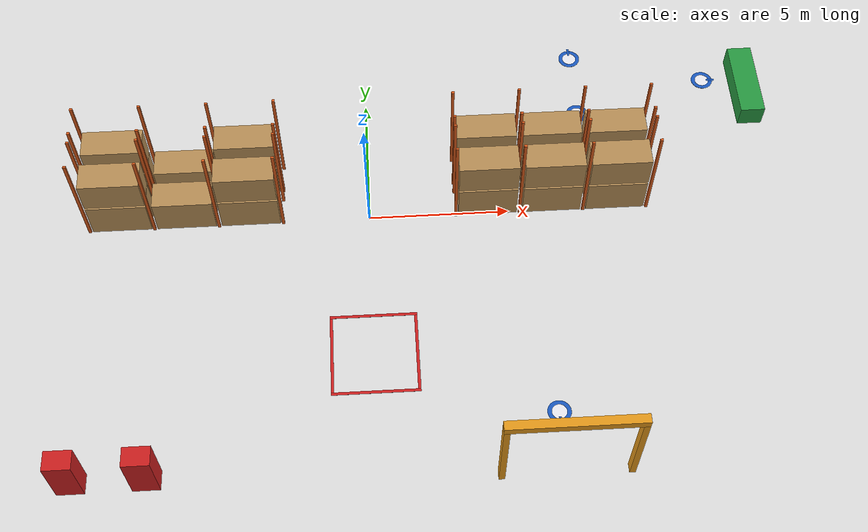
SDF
<sdf version="1.8">
 <world name="warehouse">
  <model name="DoorGap">
   <static>true</static>
   <pose>6.00 -10.10 0 0 0 0</pose>
   <link name="link">
    <collision name="post_west_collision">
     <pose>-2.100 0.000 1.750 0 0 0</pose>
     <geometry><box><size>0.200 0.300 3.500</size></box></geometry>
    </collision>
    <visual name="post_west_visual">
     <pose>-2.100 0.000 1.750 0 0 0</pose>
     <geometry><box><size>0.200 0.300 3.500</size></box></geometry>
     <material><ambient>0.90 0.60 0.10 1</ambient><diffuse>0.90 0.60 0.10 1</diffuse></material>
    </visual>
    <collision name="post_east_collision">
     <pose>2.100 0.000 1.750 0 0 0</pose>
     <geometry><box><size>0.200 0.300 3.500</size></box></geometry>
    </collision>
    <visual name="post_east_visual">
     <pose>2.100 0.000 1.750 0 0 0</pose>
     <geometry><box><size>0.200 0.300 3.500</size></box></geometry>
     <material><ambient>0.90 0.60 0.10 1</ambient><diffuse>0.90 0.60 0.10 1</diffuse></material>
    </visual>
    <collision name="lintel_collision">
     <pose>0.000 0.000 3.650 0 0 0</pose>
     <geometry><box><size>4.400 0.300 0.300</size></box></geometry>
    </collision>
    <visual name="lintel_visual">
     <pose>0.000 0.000 3.650 0 0 0</pose>
     <geometry><box><size>4.400 0.300 0.300</size></box></geometry>
     <material><ambient>0.90 0.60 0.10 1</ambient><diffuse>0.90 0.60 0.10 1</diffuse></material>
    </visual>
   </link>
  </model>
  <model name="RackRowB_West">
   <static>true</static>
   <link name="link">
    <collision name="bn_frame0_front_collision">
     <pose>-10.000 2.360 2.000 0 0 0</pose>
     <geometry><box><size>0.100 0.080 4.000</size></box></geometry>
    </collision>
    <visual name="bn_frame0_front_visual">
     <pose>-10.000 2.360 2.000 0 0 0</pose>
     <geometry><box><size>0.100 0.080 4.000</size></box></geometry>
     <material><ambient>0.85 0.35 0.10 1</ambient><diffuse>0.85 0.35 0.10 1</diffuse></material>
    </visual>
    <collision name="bn_frame0_rear_collision">
     <pose>-10.000 1.340 2.000 0 0 0</pose>
     <geometry><box><size>0.100 0.080 4.000</size></box></geometry>
    </collision>
    <visual name="bn_frame0_rear_visual">
     <pose>-10.000 1.340 2.000 0 0 0</pose>
     <geometry><box><size>0.100 0.080 4.000</size></box></geometry>
     <material><ambient>0.85 0.35 0.10 1</ambient><diffuse>0.85 0.35 0.10 1</diffuse></material>
    </visual>
    <collision name="bn_frame1_front_collision">
     <pose>-7.700 2.360 2.000 0 0 0</pose>
     <geometry><box><size>0.100 0.080 4.000</size></box></geometry>
    </collision>
    <visual name="bn_frame1_front_visual">
     <pose>-7.700 2.360 2.000 0 0 0</pose>
     <geometry><box><size>0.100 0.080 4.000</size></box></geometry>
     <material><ambient>0.85 0.35 0.10 1</ambient><diffuse>0.85 0.35 0.10 1</diffuse></material>
    </visual>
    <collision name="bn_frame1_rear_collision">
     <pose>-7.700 1.340 2.000 0 0 0</pose>
     <geometry><box><size>0.100 0.080 4.000</size></box></geometry>
    </collision>
    <visual name="bn_frame1_rear_visual">
     <pose>-7.700 1.340 2.000 0 0 0</pose>
     <geometry><box><size>0.100 0.080 4.000</size></box></geometry>
     <material><ambient>0.85 0.35 0.10 1</ambient><diffuse>0.85 0.35 0.10 1</diffuse></material>
    </visual>
    <collision name="bn_frame2_front_collision">
     <pose>-5.400 2.360 2.000 0 0 0</pose>
     <geometry><box><size>0.100 0.080 4.000</size></box></geometry>
    </collision>
    <visual name="bn_frame2_front_visual">
     <pose>-5.400 2.360 2.000 0 0 0</pose>
     <geometry><box><size>0.100 0.080 4.000</size></box></geometry>
     <material><ambient>0.85 0.35 0.10 1</ambient><diffuse>0.85 0.35 0.10 1</diffuse></material>
    </visual>
    <collision name="bn_frame2_rear_collision">
     <pose>-5.400 1.340 2.000 0 0 0</pose>
     <geometry><box><size>0.100 0.080 4.000</size></box></geometry>
    </collision>
    <visual name="bn_frame2_rear_visual">
     <pose>-5.400 1.340 2.000 0 0 0</pose>
     <geometry><box><size>0.100 0.080 4.000</size></box></geometry>
     <material><ambient>0.85 0.35 0.10 1</ambient><diffuse>0.85 0.35 0.10 1</diffuse></material>
    </visual>
    <collision name="bn_frame3_front_collision">
     <pose>-3.100 2.360 2.000 0 0 0</pose>
     <geometry><box><size>0.100 0.080 4.000</size></box></geometry>
    </collision>
    <visual name="bn_frame3_front_visual">
     <pose>-3.100 2.360 2.000 0 0 0</pose>
     <geometry><box><size>0.100 0.080 4.000</size></box></geometry>
     <material><ambient>0.85 0.35 0.10 1</ambient><diffuse>0.85 0.35 0.10 1</diffuse></material>
    </visual>
    <collision name="bn_frame3_rear_collision">
     <pose>-3.100 1.340 2.000 0 0 0</pose>
     <geometry><box><size>0.100 0.080 4.000</size></box></geometry>
    </collision>
    <visual name="bn_frame3_rear_visual">
     <pose>-3.100 1.340 2.000 0 0 0</pose>
     <geometry><box><size>0.100 0.080 4.000</size></box></geometry>
     <material><ambient>0.85 0.35 0.10 1</ambient><diffuse>0.85 0.35 0.10 1</diffuse></material>
    </visual>
    <collision name="bn_bay0_level1_collision">
     <pose>-8.850 1.850 0.700 0 0 0</pose>
     <geometry><box><size>2.100 1.000 1.400</size></box></geometry>
    </collision>
    <visual name="bn_bay0_level1_visual">
     <pose>-8.850 1.850 0.700 0 0 0</pose>
     <geometry><box><size>2.100 1.000 1.400</size></box></geometry>
     <material><ambient>0.72 0.56 0.34 1</ambient><diffuse>0.72 0.56 0.34 1</diffuse></material>
    </visual>
    <collision name="bn_bay0_level2_collision">
     <pose>-8.850 1.850 2.100 0 0 0</pose>
     <geometry><box><size>2.100 1.000 1.200</size></box></geometry>
    </collision>
    <visual name="bn_bay0_level2_visual">
     <pose>-8.850 1.850 2.100 0 0 0</pose>
     <geometry><box><size>2.100 1.000 1.200</size></box></geometry>
     <material><ambient>0.72 0.56 0.34 1</ambient><diffuse>0.72 0.56 0.34 1</diffuse></material>
    </visual>
    <collision name="bn_bay1_level1_collision">
     <pose>-6.550 1.850 0.700 0 0 0</pose>
     <geometry><box><size>2.100 1.000 1.400</size></box></geometry>
    </collision>
    <visual name="bn_bay1_level1_visual">
     <pose>-6.550 1.850 0.700 0 0 0</pose>
     <geometry><box><size>2.100 1.000 1.400</size></box></geometry>
     <material><ambient>0.72 0.56 0.34 1</ambient><diffuse>0.72 0.56 0.34 1</diffuse></material>
    </visual>
    <collision name="bn_bay2_level1_collision">
     <pose>-4.250 1.850 0.700 0 0 0</pose>
     <geometry><box><size>2.100 1.000 1.400</size></box></geometry>
    </collision>
    <visual name="bn_bay2_level1_visual">
     <pose>-4.250 1.850 0.700 0 0 0</pose>
     <geometry><box><size>2.100 1.000 1.400</size></box></geometry>
     <material><ambient>0.72 0.56 0.34 1</ambient><diffuse>0.72 0.56 0.34 1</diffuse></material>
    </visual>
    <collision name="bn_bay2_level2_collision">
     <pose>-4.250 1.850 2.100 0 0 0</pose>
     <geometry><box><size>2.100 1.000 1.200</size></box></geometry>
    </collision>
    <visual name="bn_bay2_level2_visual">
     <pose>-4.250 1.850 2.100 0 0 0</pose>
     <geometry><box><size>2.100 1.000 1.200</size></box></geometry>
     <material><ambient>0.72 0.56 0.34 1</ambient><diffuse>0.72 0.56 0.34 1</diffuse></material>
    </visual>
    <collision name="bs_frame0_front_collision">
     <pose>-10.000 -0.060 2.000 0 0 0</pose>
     <geometry><box><size>0.100 0.080 4.000</size></box></geometry>
    </collision>
    <visual name="bs_frame0_front_visual">
     <pose>-10.000 -0.060 2.000 0 0 0</pose>
     <geometry><box><size>0.100 0.080 4.000</size></box></geometry>
     <material><ambient>0.85 0.35 0.10 1</ambient><diffuse>0.85 0.35 0.10 1</diffuse></material>
    </visual>
    <collision name="bs_frame0_rear_collision">
     <pose>-10.000 0.940 2.000 0 0 0</pose>
     <geometry><box><size>0.100 0.080 4.000</size></box></geometry>
    </collision>
    <visual name="bs_frame0_rear_visual">
     <pose>-10.000 0.940 2.000 0 0 0</pose>
     <geometry><box><size>0.100 0.080 4.000</size></box></geometry>
     <material><ambient>0.85 0.35 0.10 1</ambient><diffuse>0.85 0.35 0.10 1</diffuse></material>
    </visual>
    <collision name="bs_frame1_front_collision">
     <pose>-7.700 -0.060 2.000 0 0 0</pose>
     <geometry><box><size>0.100 0.080 4.000</size></box></geometry>
    </collision>
    <visual name="bs_frame1_front_visual">
     <pose>-7.700 -0.060 2.000 0 0 0</pose>
     <geometry><box><size>0.100 0.080 4.000</size></box></geometry>
     <material><ambient>0.85 0.35 0.10 1</ambient><diffuse>0.85 0.35 0.10 1</diffuse></material>
    </visual>
    <collision name="bs_frame1_rear_collision">
     <pose>-7.700 0.940 2.000 0 0 0</pose>
     <geometry><box><size>0.100 0.080 4.000</size></box></geometry>
    </collision>
    <visual name="bs_frame1_rear_visual">
     <pose>-7.700 0.940 2.000 0 0 0</pose>
     <geometry><box><size>0.100 0.080 4.000</size></box></geometry>
     <material><ambient>0.85 0.35 0.10 1</ambient><diffuse>0.85 0.35 0.10 1</diffuse></material>
    </visual>
    <collision name="bs_frame2_front_collision">
     <pose>-5.400 -0.060 2.000 0 0 0</pose>
     <geometry><box><size>0.100 0.080 4.000</size></box></geometry>
    </collision>
    <visual name="bs_frame2_front_visual">
     <pose>-5.400 -0.060 2.000 0 0 0</pose>
     <geometry><box><size>0.100 0.080 4.000</size></box></geometry>
     <material><ambient>0.85 0.35 0.10 1</ambient><diffuse>0.85 0.35 0.10 1</diffuse></material>
    </visual>
    <collision name="bs_frame2_rear_collision">
     <pose>-5.400 0.940 2.000 0 0 0</pose>
     <geometry><box><size>0.100 0.080 4.000</size></box></geometry>
    </collision>
    <visual name="bs_frame2_rear_visual">
     <pose>-5.400 0.940 2.000 0 0 0</pose>
     <geometry><box><size>0.100 0.080 4.000</size></box></geometry>
     <material><ambient>0.85 0.35 0.10 1</ambient><diffuse>0.85 0.35 0.10 1</diffuse></material>
    </visual>
    <collision name="bs_frame3_front_collision">
     <pose>-3.100 -0.060 2.000 0 0 0</pose>
     <geometry><box><size>0.100 0.080 4.000</size></box></geometry>
    </collision>
    <visual name="bs_frame3_front_visual">
     <pose>-3.100 -0.060 2.000 0 0 0</pose>
     <geometry><box><size>0.100 0.080 4.000</size></box></geometry>
     <material><ambient>0.85 0.35 0.10 1</ambient><diffuse>0.85 0.35 0.10 1</diffuse></material>
    </visual>
    <collision name="bs_frame3_rear_collision">
     <pose>-3.100 0.940 2.000 0 0 0</pose>
     <geometry><box><size>0.100 0.080 4.000</size></box></geometry>
    </collision>
    <visual name="bs_frame3_rear_visual">
     <pose>-3.100 0.940 2.000 0 0 0</pose>
     <geometry><box><size>0.100 0.080 4.000</size></box></geometry>
     <material><ambient>0.85 0.35 0.10 1</ambient><diffuse>0.85 0.35 0.10 1</diffuse></material>
    </visual>
    <collision name="bs_bay0_level1_collision">
     <pose>-8.850 0.450 0.700 0 0 0</pose>
     <geometry><box><size>2.100 1.000 1.400</size></box></geometry>
    </collision>
    <visual name="bs_bay0_level1_visual">
     <pose>-8.850 0.450 0.700 0 0 0</pose>
     <geometry><box><size>2.100 1.000 1.400</size></box></geometry>
     <material><ambient>0.72 0.56 0.34 1</ambient><diffuse>0.72 0.56 0.34 1</diffuse></material>
    </visual>
    <collision name="bs_bay0_level2_collision">
     <pose>-8.850 0.450 2.100 0 0 0</pose>
     <geometry><box><size>2.100 1.000 1.200</size></box></geometry>
    </collision>
    <visual name="bs_bay0_level2_visual">
     <pose>-8.850 0.450 2.100 0 0 0</pose>
     <geometry><box><size>2.100 1.000 1.200</size></box></geometry>
     <material><ambient>0.72 0.56 0.34 1</ambient><diffuse>0.72 0.56 0.34 1</diffuse></material>
    </visual>
    <collision name="bs_bay1_level1_collision">
     <pose>-6.550 0.450 0.700 0 0 0</pose>
     <geometry><box><size>2.100 1.000 1.400</size></box></geometry>
    </collision>
    <visual name="bs_bay1_level1_visual">
     <pose>-6.550 0.450 0.700 0 0 0</pose>
     <geometry><box><size>2.100 1.000 1.400</size></box></geometry>
     <material><ambient>0.72 0.56 0.34 1</ambient><diffuse>0.72 0.56 0.34 1</diffuse></material>
    </visual>
    <collision name="bs_bay2_level1_collision">
     <pose>-4.250 0.450 0.700 0 0 0</pose>
     <geometry><box><size>2.100 1.000 1.400</size></box></geometry>
    </collision>
    <visual name="bs_bay2_level1_visual">
     <pose>-4.250 0.450 0.700 0 0 0</pose>
     <geometry><box><size>2.100 1.000 1.400</size></box></geometry>
     <material><ambient>0.72 0.56 0.34 1</ambient><diffuse>0.72 0.56 0.34 1</diffuse></material>
    </visual>
    <collision name="bs_bay2_level2_collision">
     <pose>-4.250 0.450 2.100 0 0 0</pose>
     <geometry><box><size>2.100 1.000 1.200</size></box></geometry>
    </collision>
    <visual name="bs_bay2_level2_visual">
     <pose>-4.250 0.450 2.100 0 0 0</pose>
     <geometry><box><size>2.100 1.000 1.200</size></box></geometry>
     <material><ambient>0.72 0.56 0.34 1</ambient><diffuse>0.72 0.56 0.34 1</diffuse></material>
    </visual>
   </link>
  </model>
  <model name="RackRowB_East">
   <static>true</static>
   <link name="link">
    <collision name="bn_frame0_front_collision">
     <pose>3.100 2.360 2.000 0 0 0</pose>
     <geometry><box><size>0.100 0.080 4.000</size></box></geometry>
    </collision>
    <visual name="bn_frame0_front_visual">
     <pose>3.100 2.360 2.000 0 0 0</pose>
     <geometry><box><size>0.100 0.080 4.000</size></box></geometry>
     <material><ambient>0.85 0.35 0.10 1</ambient><diffuse>0.85 0.35 0.10 1</diffuse></material>
    </visual>
    <collision name="bn_frame0_rear_collision">
     <pose>3.100 1.340 2.000 0 0 0</pose>
     <geometry><box><size>0.100 0.080 4.000</size></box></geometry>
    </collision>
    <visual name="bn_frame0_rear_visual">
     <pose>3.100 1.340 2.000 0 0 0</pose>
     <geometry><box><size>0.100 0.080 4.000</size></box></geometry>
     <material><ambient>0.85 0.35 0.10 1</ambient><diffuse>0.85 0.35 0.10 1</diffuse></material>
    </visual>
    <collision name="bn_frame1_front_collision">
     <pose>5.400 2.360 2.000 0 0 0</pose>
     <geometry><box><size>0.100 0.080 4.000</size></box></geometry>
    </collision>
    <visual name="bn_frame1_front_visual">
     <pose>5.400 2.360 2.000 0 0 0</pose>
     <geometry><box><size>0.100 0.080 4.000</size></box></geometry>
     <material><ambient>0.85 0.35 0.10 1</ambient><diffuse>0.85 0.35 0.10 1</diffuse></material>
    </visual>
    <collision name="bn_frame1_rear_collision">
     <pose>5.400 1.340 2.000 0 0 0</pose>
     <geometry><box><size>0.100 0.080 4.000</size></box></geometry>
    </collision>
    <visual name="bn_frame1_rear_visual">
     <pose>5.400 1.340 2.000 0 0 0</pose>
     <geometry><box><size>0.100 0.080 4.000</size></box></geometry>
     <material><ambient>0.85 0.35 0.10 1</ambient><diffuse>0.85 0.35 0.10 1</diffuse></material>
    </visual>
    <collision name="bn_frame2_front_collision">
     <pose>7.700 2.360 2.000 0 0 0</pose>
     <geometry><box><size>0.100 0.080 4.000</size></box></geometry>
    </collision>
    <visual name="bn_frame2_front_visual">
     <pose>7.700 2.360 2.000 0 0 0</pose>
     <geometry><box><size>0.100 0.080 4.000</size></box></geometry>
     <material><ambient>0.85 0.35 0.10 1</ambient><diffuse>0.85 0.35 0.10 1</diffuse></material>
    </visual>
    <collision name="bn_frame2_rear_collision">
     <pose>7.700 1.340 2.000 0 0 0</pose>
     <geometry><box><size>0.100 0.080 4.000</size></box></geometry>
    </collision>
    <visual name="bn_frame2_rear_visual">
     <pose>7.700 1.340 2.000 0 0 0</pose>
     <geometry><box><size>0.100 0.080 4.000</size></box></geometry>
     <material><ambient>0.85 0.35 0.10 1</ambient><diffuse>0.85 0.35 0.10 1</diffuse></material>
    </visual>
    <collision name="bn_frame3_front_collision">
     <pose>10.000 2.360 2.000 0 0 0</pose>
     <geometry><box><size>0.100 0.080 4.000</size></box></geometry>
    </collision>
    <visual name="bn_frame3_front_visual">
     <pose>10.000 2.360 2.000 0 0 0</pose>
     <geometry><box><size>0.100 0.080 4.000</size></box></geometry>
     <material><ambient>0.85 0.35 0.10 1</ambient><diffuse>0.85 0.35 0.10 1</diffuse></material>
    </visual>
    <collision name="bn_frame3_rear_collision">
     <pose>10.000 1.340 2.000 0 0 0</pose>
     <geometry><box><size>0.100 0.080 4.000</size></box></geometry>
    </collision>
    <visual name="bn_frame3_rear_visual">
     <pose>10.000 1.340 2.000 0 0 0</pose>
     <geometry><box><size>0.100 0.080 4.000</size></box></geometry>
     <material><ambient>0.85 0.35 0.10 1</ambient><diffuse>0.85 0.35 0.10 1</diffuse></material>
    </visual>
    <collision name="bn_bay0_level1_collision">
     <pose>4.250 1.850 0.700 0 0 0</pose>
     <geometry><box><size>2.100 1.000 1.400</size></box></geometry>
    </collision>
    <visual name="bn_bay0_level1_visual">
     <pose>4.250 1.850 0.700 0 0 0</pose>
     <geometry><box><size>2.100 1.000 1.400</size></box></geometry>
     <material><ambient>0.72 0.56 0.34 1</ambient><diffuse>0.72 0.56 0.34 1</diffuse></material>
    </visual>
    <collision name="bn_bay0_level2_collision">
     <pose>4.250 1.850 2.100 0 0 0</pose>
     <geometry><box><size>2.100 1.000 1.200</size></box></geometry>
    </collision>
    <visual name="bn_bay0_level2_visual">
     <pose>4.250 1.850 2.100 0 0 0</pose>
     <geometry><box><size>2.100 1.000 1.200</size></box></geometry>
     <material><ambient>0.72 0.56 0.34 1</ambient><diffuse>0.72 0.56 0.34 1</diffuse></material>
    </visual>
    <collision name="bn_bay1_level1_collision">
     <pose>6.550 1.850 0.700 0 0 0</pose>
     <geometry><box><size>2.100 1.000 1.400</size></box></geometry>
    </collision>
    <visual name="bn_bay1_level1_visual">
     <pose>6.550 1.850 0.700 0 0 0</pose>
     <geometry><box><size>2.100 1.000 1.400</size></box></geometry>
     <material><ambient>0.72 0.56 0.34 1</ambient><diffuse>0.72 0.56 0.34 1</diffuse></material>
    </visual>
    <collision name="bn_bay1_level2_collision">
     <pose>6.550 1.850 2.100 0 0 0</pose>
     <geometry><box><size>2.100 1.000 1.200</size></box></geometry>
    </collision>
    <visual name="bn_bay1_level2_visual">
     <pose>6.550 1.850 2.100 0 0 0</pose>
     <geometry><box><size>2.100 1.000 1.200</size></box></geometry>
     <material><ambient>0.72 0.56 0.34 1</ambient><diffuse>0.72 0.56 0.34 1</diffuse></material>
    </visual>
    <collision name="bn_bay2_level1_collision">
     <pose>8.850 1.850 0.700 0 0 0</pose>
     <geometry><box><size>2.100 1.000 1.400</size></box></geometry>
    </collision>
    <visual name="bn_bay2_level1_visual">
     <pose>8.850 1.850 0.700 0 0 0</pose>
     <geometry><box><size>2.100 1.000 1.400</size></box></geometry>
     <material><ambient>0.72 0.56 0.34 1</ambient><diffuse>0.72 0.56 0.34 1</diffuse></material>
    </visual>
    <collision name="bn_bay2_level2_collision">
     <pose>8.850 1.850 2.100 0 0 0</pose>
     <geometry><box><size>2.100 1.000 1.200</size></box></geometry>
    </collision>
    <visual name="bn_bay2_level2_visual">
     <pose>8.850 1.850 2.100 0 0 0</pose>
     <geometry><box><size>2.100 1.000 1.200</size></box></geometry>
     <material><ambient>0.72 0.56 0.34 1</ambient><diffuse>0.72 0.56 0.34 1</diffuse></material>
    </visual>
    <collision name="bs_frame0_front_collision">
     <pose>3.100 -0.060 2.000 0 0 0</pose>
     <geometry><box><size>0.100 0.080 4.000</size></box></geometry>
    </collision>
    <visual name="bs_frame0_front_visual">
     <pose>3.100 -0.060 2.000 0 0 0</pose>
     <geometry><box><size>0.100 0.080 4.000</size></box></geometry>
     <material><ambient>0.85 0.35 0.10 1</ambient><diffuse>0.85 0.35 0.10 1</diffuse></material>
    </visual>
    <collision name="bs_frame0_rear_collision">
     <pose>3.100 0.940 2.000 0 0 0</pose>
     <geometry><box><size>0.100 0.080 4.000</size></box></geometry>
    </collision>
    <visual name="bs_frame0_rear_visual">
     <pose>3.100 0.940 2.000 0 0 0</pose>
     <geometry><box><size>0.100 0.080 4.000</size></box></geometry>
     <material><ambient>0.85 0.35 0.10 1</ambient><diffuse>0.85 0.35 0.10 1</diffuse></material>
    </visual>
    <collision name="bs_frame1_front_collision">
     <pose>5.400 -0.060 2.000 0 0 0</pose>
     <geometry><box><size>0.100 0.080 4.000</size></box></geometry>
    </collision>
    <visual name="bs_frame1_front_visual">
     <pose>5.400 -0.060 2.000 0 0 0</pose>
     <geometry><box><size>0.100 0.080 4.000</size></box></geometry>
     <material><ambient>0.85 0.35 0.10 1</ambient><diffuse>0.85 0.35 0.10 1</diffuse></material>
    </visual>
    <collision name="bs_frame1_rear_collision">
     <pose>5.400 0.940 2.000 0 0 0</pose>
     <geometry><box><size>0.100 0.080 4.000</size></box></geometry>
    </collision>
    <visual name="bs_frame1_rear_visual">
     <pose>5.400 0.940 2.000 0 0 0</pose>
     <geometry><box><size>0.100 0.080 4.000</size></box></geometry>
     <material><ambient>0.85 0.35 0.10 1</ambient><diffuse>0.85 0.35 0.10 1</diffuse></material>
    </visual>
    <collision name="bs_frame2_front_collision">
     <pose>7.700 -0.060 2.000 0 0 0</pose>
     <geometry><box><size>0.100 0.080 4.000</size></box></geometry>
    </collision>
    <visual name="bs_frame2_front_visual">
     <pose>7.700 -0.060 2.000 0 0 0</pose>
     <geometry><box><size>0.100 0.080 4.000</size></box></geometry>
     <material><ambient>0.85 0.35 0.10 1</ambient><diffuse>0.85 0.35 0.10 1</diffuse></material>
    </visual>
    <collision name="bs_frame2_rear_collision">
     <pose>7.700 0.940 2.000 0 0 0</pose>
     <geometry><box><size>0.100 0.080 4.000</size></box></geometry>
    </collision>
    <visual name="bs_frame2_rear_visual">
     <pose>7.700 0.940 2.000 0 0 0</pose>
     <geometry><box><size>0.100 0.080 4.000</size></box></geometry>
     <material><ambient>0.85 0.35 0.10 1</ambient><diffuse>0.85 0.35 0.10 1</diffuse></material>
    </visual>
    <collision name="bs_frame3_front_collision">
     <pose>10.000 -0.060 2.000 0 0 0</pose>
     <geometry><box><size>0.100 0.080 4.000</size></box></geometry>
    </collision>
    <visual name="bs_frame3_front_visual">
     <pose>10.000 -0.060 2.000 0 0 0</pose>
     <geometry><box><size>0.100 0.080 4.000</size></box></geometry>
     <material><ambient>0.85 0.35 0.10 1</ambient><diffuse>0.85 0.35 0.10 1</diffuse></material>
    </visual>
    <collision name="bs_frame3_rear_collision">
     <pose>10.000 0.940 2.000 0 0 0</pose>
     <geometry><box><size>0.100 0.080 4.000</size></box></geometry>
    </collision>
    <visual name="bs_frame3_rear_visual">
     <pose>10.000 0.940 2.000 0 0 0</pose>
     <geometry><box><size>0.100 0.080 4.000</size></box></geometry>
     <material><ambient>0.85 0.35 0.10 1</ambient><diffuse>0.85 0.35 0.10 1</diffuse></material>
    </visual>
    <collision name="bs_bay0_level1_collision">
     <pose>4.250 0.450 0.700 0 0 0</pose>
     <geometry><box><size>2.100 1.000 1.400</size></box></geometry>
    </collision>
    <visual name="bs_bay0_level1_visual">
     <pose>4.250 0.450 0.700 0 0 0</pose>
     <geometry><box><size>2.100 1.000 1.400</size></box></geometry>
     <material><ambient>0.72 0.56 0.34 1</ambient><diffuse>0.72 0.56 0.34 1</diffuse></material>
    </visual>
    <collision name="bs_bay0_level2_collision">
     <pose>4.250 0.450 2.100 0 0 0</pose>
     <geometry><box><size>2.100 1.000 1.200</size></box></geometry>
    </collision>
    <visual name="bs_bay0_level2_visual">
     <pose>4.250 0.450 2.100 0 0 0</pose>
     <geometry><box><size>2.100 1.000 1.200</size></box></geometry>
     <material><ambient>0.72 0.56 0.34 1</ambient><diffuse>0.72 0.56 0.34 1</diffuse></material>
    </visual>
    <collision name="bs_bay1_level1_collision">
     <pose>6.550 0.450 0.700 0 0 0</pose>
     <geometry><box><size>2.100 1.000 1.400</size></box></geometry>
    </collision>
    <visual name="bs_bay1_level1_visual">
     <pose>6.550 0.450 0.700 0 0 0</pose>
     <geometry><box><size>2.100 1.000 1.400</size></box></geometry>
     <material><ambient>0.72 0.56 0.34 1</ambient><diffuse>0.72 0.56 0.34 1</diffuse></material>
    </visual>
    <collision name="bs_bay1_level2_collision">
     <pose>6.550 0.450 2.100 0 0 0</pose>
     <geometry><box><size>2.100 1.000 1.200</size></box></geometry>
    </collision>
    <visual name="bs_bay1_level2_visual">
     <pose>6.550 0.450 2.100 0 0 0</pose>
     <geometry><box><size>2.100 1.000 1.200</size></box></geometry>
     <material><ambient>0.72 0.56 0.34 1</ambient><diffuse>0.72 0.56 0.34 1</diffuse></material>
    </visual>
    <collision name="bs_bay2_level1_collision">
     <pose>8.850 0.450 0.700 0 0 0</pose>
     <geometry><box><size>2.100 1.000 1.400</size></box></geometry>
    </collision>
    <visual name="bs_bay2_level1_visual">
     <pose>8.850 0.450 0.700 0 0 0</pose>
     <geometry><box><size>2.100 1.000 1.400</size></box></geometry>
     <material><ambient>0.72 0.56 0.34 1</ambient><diffuse>0.72 0.56 0.34 1</diffuse></material>
    </visual>
    <collision name="bs_bay2_level2_collision">
     <pose>8.850 0.450 2.100 0 0 0</pose>
     <geometry><box><size>2.100 1.000 1.200</size></box></geometry>
    </collision>
    <visual name="bs_bay2_level2_visual">
     <pose>8.850 0.450 2.100 0 0 0</pose>
     <geometry><box><size>2.100 1.000 1.200</size></box></geometry>
     <material><ambient>0.72 0.56 0.34 1</ambient><diffuse>0.72 0.56 0.34 1</diffuse></material>
    </visual>
   </link>
  </model>
  <model name="ConveyorStation">
   <static>true</static>
   <link name="link">
    <collision name="conveyorstation_collision">
     <pose>14.450 5.000 0.400 0 0 0</pose>
     <geometry><box><size>0.900 3.000 0.800</size></box></geometry>
    </collision>
    <visual name="conveyorstation_visual">
     <pose>14.450 5.000 0.400 0 0 0</pose>
     <geometry><box><size>0.900 3.000 0.800</size></box></geometry>
     <material><ambient>0.15 0.60 0.25 1</ambient><diffuse>0.15 0.60 0.25 1</diffuse></material>
    </visual>
   </link>
  </model>
  <model name="ChargeBay1Cabinet">
   <static>true</static>
   <link name="link">
    <collision name="chargebay1cabinet_collision">
     <pose>-9.800 -9.675 1.000 0 0 0</pose>
     <geometry><box><size>0.900 0.650 2.000</size></box></geometry>
    </collision>
    <visual name="chargebay1cabinet_visual">
     <pose>-9.800 -9.675 1.000 0 0 0</pose>
     <geometry><box><size>0.900 0.650 2.000</size></box></geometry>
     <material><ambient>0.80 0.12 0.12 1</ambient><diffuse>0.80 0.12 0.12 1</diffuse></material>
    </visual>
   </link>
  </model>
  <model name="ChargeBay2Cabinet">
   <static>true</static>
   <link name="link">
    <collision name="chargebay2cabinet_collision">
     <pose>-7.400 -9.675 1.000 0 0 0</pose>
     <geometry><box><size>0.900 0.650 2.000</size></box></geometry>
    </collision>
    <visual name="chargebay2cabinet_visual">
     <pose>-7.400 -9.675 1.000 0 0 0</pose>
     <geometry><box><size>0.900 0.650 2.000</size></box></geometry>
     <material><ambient>0.80 0.12 0.12 1</ambient><diffuse>0.80 0.12 0.12 1</diffuse></material>
    </visual>
   </link>
  </model>
  <model name="SafetyZoneMarking">
   <static>true</static>
   <pose>0.000 -5.500 0 0 0 0</pose>
   <link name="link">
    <visual name="edge_north">
     <pose>0.000 1.450 0.003 0 0 0</pose>
     <geometry><box><size>3.00 0.10 0.006</size></box></geometry>
     <material><ambient>0.80 0.12 0.12 1</ambient><diffuse>0.80 0.12 0.12 1</diffuse></material>
    </visual>
    <visual name="edge_south">
     <pose>0.000 -1.450 0.003 0 0 0</pose>
     <geometry><box><size>3.00 0.10 0.006</size></box></geometry>
     <material><ambient>0.80 0.12 0.12 1</ambient><diffuse>0.80 0.12 0.12 1</diffuse></material>
    </visual>
    <visual name="edge_west">
     <pose>-1.450 0.000 0.003 0 0 0</pose>
     <geometry><box><size>0.10 2.80 0.006</size></box></geometry>
     <material><ambient>0.80 0.12 0.12 1</ambient><diffuse>0.80 0.12 0.12 1</diffuse></material>
    </visual>
    <visual name="edge_east">
     <pose>1.450 0.000 0.003 0 0 0</pose>
     <geometry><box><size>0.10 2.80 0.006</size></box></geometry>
     <material><ambient>0.80 0.12 0.12 1</ambient><diffuse>0.80 0.12 0.12 1</diffuse></material>
    </visual>
   </link>
  </model>
  <model name="StationS4Paint">
   <static>true</static>
   <pose>6.000 -8.000 0 0 0 0</pose>
   <link name="link">
    <visual name="disc">
     <pose>0 0 0.003 0 0 0</pose>
     <geometry><cylinder><radius>0.40</radius><length>0.006</length></cylinder></geometry>
     <material><ambient>0.10 0.35 0.75 1</ambient><diffuse>0.10 0.35 0.75 1</diffuse></material>
    </visual>
    <visual name="core">
     <pose>0 0 0.004 0 0 0</pose>
     <geometry><cylinder><radius>0.26</radius><length>0.006</length></cylinder></geometry>
     <material><ambient>0.92 0.92 0.95 1</ambient><diffuse>0.92 0.92 0.95 1</diffuse></material>
    </visual>
    <visual name="tick">
     <pose>0.000 -0.330 0.005 0 0 -1.570796</pose>
     <geometry><box><size>0.30 0.08 0.006</size></box></geometry>
     <material><ambient>0.10 0.35 0.75 1</ambient><diffuse>0.10 0.35 0.75 1</diffuse></material>
    </visual>
   </link>
  </model>
  <model name="StationS5Paint">
   <static>true</static>
   <pose>13.000 5.650 0 0 0 0</pose>
   <link name="link">
    <visual name="disc">
     <pose>0 0 0.003 0 0 0</pose>
     <geometry><cylinder><radius>0.40</radius><length>0.006</length></cylinder></geometry>
     <material><ambient>0.10 0.35 0.75 1</ambient><diffuse>0.10 0.35 0.75 1</diffuse></material>
    </visual>
    <visual name="core">
     <pose>0 0 0.004 0 0 0</pose>
     <geometry><cylinder><radius>0.26</radius><length>0.006</length></cylinder></geometry>
     <material><ambient>0.92 0.92 0.95 1</ambient><diffuse>0.92 0.92 0.95 1</diffuse></material>
    </visual>
    <visual name="tick">
     <pose>0.330 0.000 0.005 0 0 0.000</pose>
     <geometry><box><size>0.30 0.08 0.006</size></box></geometry>
     <material><ambient>0.10 0.35 0.75 1</ambient><diffuse>0.10 0.35 0.75 1</diffuse></material>
    </visual>
   </link>
  </model>
  <model name="StationS7Paint">
   <static>true</static>
   <pose>8.000 7.000 0 0 0 0</pose>
   <link name="link">
    <visual name="disc">
     <pose>0 0 0.003 0 0 0</pose>
     <geometry><cylinder><radius>0.40</radius><length>0.006</length></cylinder></geometry>
     <material><ambient>0.10 0.35 0.75 1</ambient><diffuse>0.10 0.35 0.75 1</diffuse></material>
    </visual>
    <visual name="core">
     <pose>0 0 0.004 0 0 0</pose>
     <geometry><cylinder><radius>0.26</radius><length>0.006</length></cylinder></geometry>
     <material><ambient>0.92 0.92 0.95 1</ambient><diffuse>0.92 0.92 0.95 1</diffuse></material>
    </visual>
    <visual name="tick">
     <pose>0.000 0.330 0.005 0 0 1.570796</pose>
     <geometry><box><size>0.30 0.08 0.006</size></box></geometry>
     <material><ambient>0.10 0.35 0.75 1</ambient><diffuse>0.10 0.35 0.75 1</diffuse></material>
    </visual>
   </link>
  </model>
  <model name="StationS9Paint">
   <static>true</static>
   <pose>8.000 4.300 0 0 0 0</pose>
   <link name="link">
    <visual name="disc">
     <pose>0 0 0.003 0 0 0</pose>
     <geometry><cylinder><radius>0.40</radius><length>0.006</length></cylinder></geometry>
     <material><ambient>0.10 0.35 0.75 1</ambient><diffuse>0.10 0.35 0.75 1</diffuse></material>
    </visual>
    <visual name="core">
     <pose>0 0 0.004 0 0 0</pose>
     <geometry><cylinder><radius>0.26</radius><length>0.006</length></cylinder></geometry>
     <material><ambient>0.92 0.92 0.95 1</ambient><diffuse>0.92 0.92 0.95 1</diffuse></material>
    </visual>
    <visual name="tick">
     <pose>0.000 -0.330 0.005 0 0 -1.570796</pose>
     <geometry><box><size>0.30 0.08 0.006</size></box></geometry>
     <material><ambient>0.10 0.35 0.75 1</ambient><diffuse>0.10 0.35 0.75 1</diffuse></material>
    </visual>
   </link>
  </model>
 </world>
</sdf>
